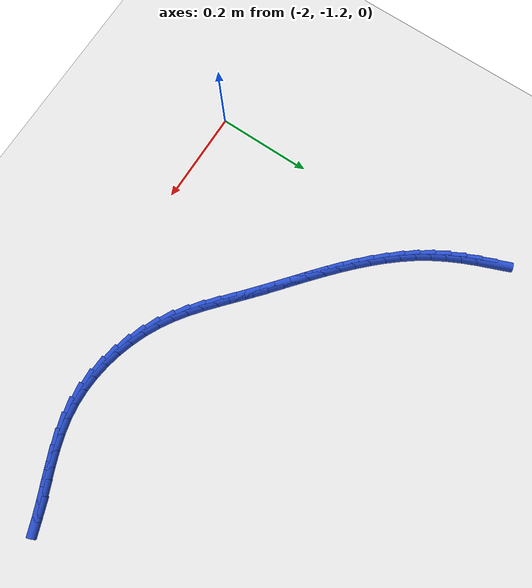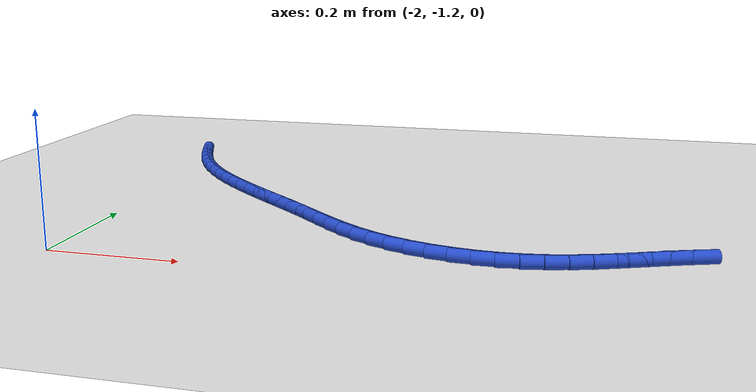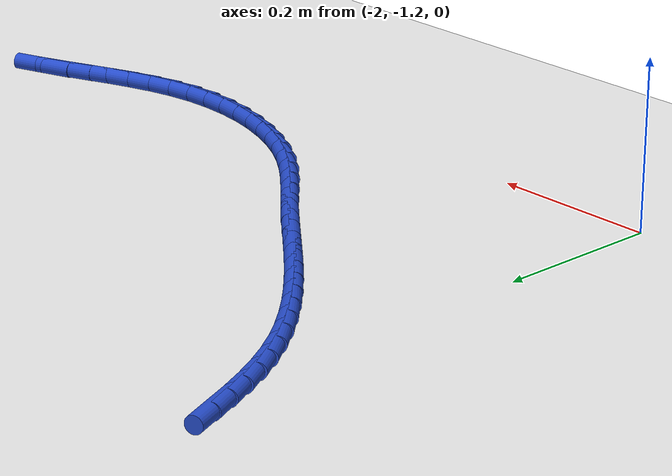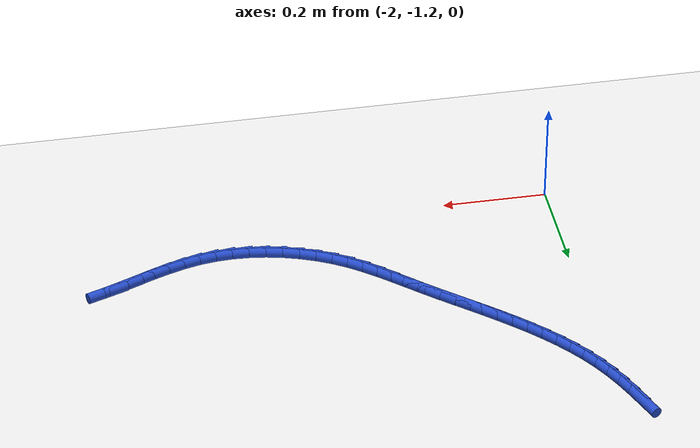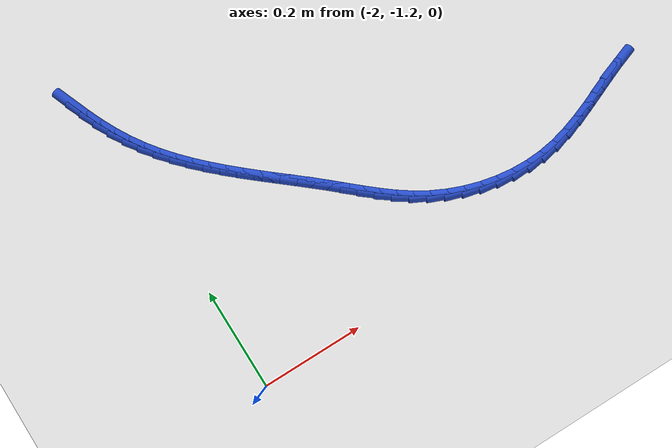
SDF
<sdf version="1.6">
 <world name="default">
  <model name="ground_plane">
   <static>1</static>
   <link name="link">
    <collision name="collision">
     <geometry><plane><normal>0 0 1</normal><size>100 100</size></plane></geometry>
     <surface><friction><ode><mu>100</mu><mu2>50</mu2></ode></friction></surface>
    </collision>
    <visual name="visual">
     <cast_shadows>0</cast_shadows>
     <geometry><plane><normal>0 0 1</normal><size>100 100</size></plane></geometry>
     <material>
      <script><uri>file://media/materials/scripts/gazebo.material</uri><name>Gazebo/WhiteGlow</name></script>
     </material>
    </visual>
   </link>
  </model>
  <model name="line">
   <link name="link_128">
    <pose>-2.0333318374800577 -0.5686166664253903 0.01 0 1.57 -1.1912159433056695</pose>
    <collision name="collision">
     <geometry><cylinder><radius>0.01</radius><length>0.08</length></cylinder></geometry>
    </collision>
    <visual name="visual">
     <material>
      <script><name>Gazebo/Blue</name><uri>file://media/materials/scripts/gazebo.material</uri></script>
     </material>
     <geometry><cylinder><radius>0.01</radius><length>0.08</length></cylinder></geometry>
    </visual>
   </link>
   <link name="link_129">
    <pose>-2.0215772260671696 -0.5980822921291878 0.01 0 1.57 -1.1540572271373954</pose>
    <collision name="collision">
     <geometry><cylinder><radius>0.01</radius><length>0.08</length></cylinder></geometry>
    </collision>
    <visual name="visual">
     <material>
      <script><name>Gazebo/Blue</name><uri>file://media/materials/scripts/gazebo.material</uri></script>
     </material>
     <geometry><cylinder><radius>0.01</radius><length>0.08</length></cylinder></geometry>
    </visual>
   </link>
   <link name="link_130">
    <pose>-2.0088110170128415 -0.6269215975905412 0.01 0 1.57 -1.1073058212748739</pose>
    <collision name="collision">
     <geometry><cylinder><radius>0.01</radius><length>0.08</length></cylinder></geometry>
    </collision>
    <visual name="visual">
     <material>
      <script><name>Gazebo/Blue</name><uri>file://media/materials/scripts/gazebo.material</uri></script>
     </material>
     <geometry><cylinder><radius>0.01</radius><length>0.08</length></cylinder></geometry>
    </visual>
   </link>
   <link name="link_131">
    <pose>-1.9948021968176 -0.6549502456118608 0.01 0 1.57 -1.0506847121864966</pose>
    <collision name="collision">
     <geometry><cylinder><radius>0.01</radius><length>0.08</length></cylinder></geometry>
    </collision>
    <visual name="visual">
     <material>
      <script><name>Gazebo/Blue</name><uri>file://media/materials/scripts/gazebo.material</uri></script>
     </material>
     <geometry><cylinder><radius>0.01</radius><length>0.08</length></cylinder></geometry>
    </visual>
   </link>
   <link name="link_132">
    <pose>-1.9793197519819756 -0.6819838989955553 0.01 0 1.57 -0.9861034100625111</pose>
    <collision name="collision">
     <geometry><cylinder><radius>0.01</radius><length>0.08</length></cylinder></geometry>
    </collision>
    <visual name="visual">
     <material>
      <script><name>Gazebo/Blue</name><uri>file://media/materials/scripts/gazebo.material</uri></script>
     </material>
     <geometry><cylinder><radius>0.01</radius><length>0.08</length></cylinder></geometry>
    </visual>
   </link>
   <link name="link_133">
    <pose>-1.962182335983068 -0.7078752817020942 0.01 0 1.57 -0.9247357023452776</pose>
    <collision name="collision">
     <geometry><cylinder><radius>0.01</radius><length>0.08</length></cylinder></geometry>
    </collision>
    <visual name="visual">
     <material>
      <script><name>Gazebo/Blue</name><uri>file://media/materials/scripts/gazebo.material</uri></script>
     </material>
     <geometry><cylinder><radius>0.01</radius><length>0.08</length></cylinder></geometry>
    </visual>
   </link>
   <link name="link_134">
    <pose>-1.94347979714886 -0.7326794814339546 0.01 0 1.57 -0.8706771427673246</pose>
    <collision name="collision">
     <geometry><cylinder><radius>0.01</radius><length>0.08</length></cylinder></geometry>
    </collision>
    <visual name="visual">
     <material>
      <script><name>Gazebo/Blue</name><uri>file://media/materials/scripts/gazebo.material</uri></script>
     </material>
     <geometry><cylinder><radius>0.01</radius><length>0.08</length></cylinder></geometry>
    </visual>
   </link>
   <link name="link_135">
    <pose>-1.923394085295848 -0.7565203113941149 0.01 0 1.57 -0.8240905201722946</pose>
    <collision name="collision">
     <geometry><cylinder><radius>0.01</radius><length>0.08</length></cylinder></geometry>
    </collision>
    <visual name="visual">
     <material>
      <script><name>Gazebo/Blue</name><uri>file://media/materials/scripts/gazebo.material</uri></script>
     </material>
     <geometry><cylinder><radius>0.01</radius><length>0.08</length></cylinder></geometry>
    </visual>
   </link>
   <link name="link_136">
    <pose>-1.9021072256888514 -0.7795216410845728 0.01 0 1.57 -0.7849432989127044</pose>
    <collision name="collision">
     <geometry><cylinder><radius>0.01</radius><length>0.08</length></cylinder></geometry>
    </collision>
    <visual name="visual">
     <material>
      <script><name>Gazebo/Blue</name><uri>file://media/materials/scripts/gazebo.material</uri></script>
     </material>
     <geometry><cylinder><radius>0.01</radius><length>0.08</length></cylinder></geometry>
    </visual>
   </link>
   <link name="link_137">
    <pose>-1.8798012435926872 -0.8018073400073276 0.01 0 1.57 -0.7530892033450471</pose>
    <collision name="collision">
     <geometry><cylinder><radius>0.01</radius><length>0.08</length></cylinder></geometry>
    </collision>
    <visual name="visual">
     <material>
      <script><name>Gazebo/Blue</name><uri>file://media/materials/scripts/gazebo.material</uri></script>
     </material>
     <geometry><cylinder><radius>0.01</radius><length>0.08</length></cylinder></geometry>
    </visual>
   </link>
   <link name="link_138">
    <pose>-1.8566581642721742 -0.8235012776643783 0.01 0 1.57 -0.7283330077787805</pose>
    <collision name="collision">
     <geometry><cylinder><radius>0.01</radius><length>0.08</length></cylinder></geometry>
    </collision>
    <visual name="visual">
     <material>
      <script><name>Gazebo/Blue</name><uri>file://media/materials/scripts/gazebo.material</uri></script>
     </material>
     <geometry><cylinder><radius>0.01</radius><length>0.08</length></cylinder></geometry>
    </visual>
   </link>
   <link name="link_139">
    <pose>-1.832860012992129 -0.844727323557724 0.01 0 1.57 -0.7104792345222577</pose>
    <collision name="collision">
     <geometry><cylinder><radius>0.01</radius><length>0.08</length></cylinder></geometry>
    </collision>
    <visual name="visual">
     <material>
      <script><name>Gazebo/Blue</name><uri>file://media/materials/scripts/gazebo.material</uri></script>
     </material>
     <geometry><cylinder><radius>0.01</radius><length>0.08</length></cylinder></geometry>
    </visual>
   </link>
   <link name="link_140">
    <pose>-1.8085888150173706 -0.8656093471893621 0.01 0 1.57 -0.6993661187297994</pose>
    <collision name="collision">
     <geometry><cylinder><radius>0.01</radius><length>0.08</length></cylinder></geometry>
    </collision>
    <visual name="visual">
     <material>
      <script><name>Gazebo/Blue</name><uri>file://media/materials/scripts/gazebo.material</uri></script>
     </material>
     <geometry><cylinder><radius>0.01</radius><length>0.08</length></cylinder></geometry>
    </visual>
   </link>
   <link name="link_141">
    <pose>-1.7840265956127175 -0.8862712180612929 0.01 0 1.57 -0.6948875568641754</pose>
    <collision name="collision">
     <geometry><cylinder><radius>0.01</radius><length>0.08</length></cylinder></geometry>
    </collision>
    <visual name="visual">
     <material>
      <script><name>Gazebo/Blue</name><uri>file://media/materials/scripts/gazebo.material</uri></script>
     </material>
     <geometry><cylinder><radius>0.01</radius><length>0.08</length></cylinder></geometry>
    </visual>
   </link>
   <link name="link_142">
    <pose>-1.7593553800429866 -0.9068368056755143 0.01 0 1.57 -0.6970056819738362</pose>
    <collision name="collision">
     <geometry><cylinder><radius>0.01</radius><length>0.08</length></cylinder></geometry>
    </collision>
    <visual name="visual">
     <material>
      <script><name>Gazebo/Blue</name><uri>file://media/materials/scripts/gazebo.material</uri></script>
     </material>
     <geometry><cylinder><radius>0.01</radius><length>0.08</length></cylinder></geometry>
    </visual>
   </link>
   <link name="link_143">
    <pose>-1.7347571935729955 -0.9274299795340257 0.01 0 1.57 -0.7057559091580365</pose>
    <collision name="collision">
     <geometry><cylinder><radius>0.01</radius><length>0.08</length></cylinder></geometry>
    </collision>
    <visual name="visual">
     <material>
      <script><name>Gazebo/Blue</name><uri>file://media/materials/scripts/gazebo.material</uri></script>
     </material>
     <geometry><cylinder><radius>0.01</radius><length>0.08</length></cylinder></geometry>
    </visual>
   </link>
   <link name="link_144">
    <pose>-1.7104140614675638 -0.9481746091388252 0.01 0 1.57 -0.7195799318943717</pose>
    <collision name="collision">
     <geometry><cylinder><radius>0.01</radius><length>0.08</length></cylinder></geometry>
    </collision>
    <visual name="visual">
     <material>
      <script><name>Gazebo/Blue</name><uri>file://media/materials/scripts/gazebo.material</uri></script>
     </material>
     <geometry><cylinder><radius>0.01</radius><length>0.08</length></cylinder></geometry>
    </visual>
   </link>
   <link name="link_145">
    <pose>-1.6864696896493567 -0.9691576600265422 0.01 0 1.57 -0.7228752325870458</pose>
    <collision name="collision">
     <geometry><cylinder><radius>0.01</radius><length>0.08</length></cylinder></geometry>
    </collision>
    <visual name="visual">
     <material>
      <script><name>Gazebo/Blue</name><uri>file://media/materials/scripts/gazebo.material</uri></script>
     </material>
     <geometry><cylinder><radius>0.01</radius><length>0.08</length></cylinder></geometry>
    </visual>
   </link>
   <link name="link_146">
    <pose>-1.6627079209304498 -0.9901195266544158 0.01 0 1.57 -0.7068540535263381</pose>
    <collision name="collision">
     <geometry><cylinder><radius>0.01</radius><length>0.08</length></cylinder></geometry>
    </collision>
    <visual name="visual">
     <material>
      <script><name>Gazebo/Blue</name><uri>file://media/materials/scripts/gazebo.material</uri></script>
     </material>
     <geometry><cylinder><radius>0.01</radius><length>0.08</length></cylinder></geometry>
    </visual>
   </link>
   <link name="link_147">
    <pose>-1.6387155145127368 -1.0106107994194724 0.01 0 1.57 -0.6712339032358948</pose>
    <collision name="collision">
     <geometry><cylinder><radius>0.01</radius><length>0.08</length></cylinder></geometry>
    </collision>
    <visual name="visual">
     <material>
      <script><name>Gazebo/Blue</name><uri>file://media/materials/scripts/gazebo.material</uri></script>
     </material>
     <geometry><cylinder><radius>0.01</radius><length>0.08</length></cylinder></geometry>
    </visual>
   </link>
   <link name="link_148">
    <pose>-1.6140772139335644 -1.0301801275054923 0.01 0 1.57 -0.6160962199955458</pose>
    <collision name="collision">
     <geometry><cylinder><radius>0.01</radius><length>0.08</length></cylinder></geometry>
    </collision>
    <visual name="visual">
     <material>
      <script><name>Gazebo/Blue</name><uri>file://media/materials/scripts/gazebo.material</uri></script>
     </material>
     <geometry><cylinder><radius>0.01</radius><length>0.08</length></cylinder></geometry>
    </visual>
   </link>
   <link name="link_149">
    <pose>-1.5883777627302793 -1.048376160096252 0.01 0 1.57 -0.5425683333781128</pose>
    <collision name="collision">
     <geometry><cylinder><radius>0.01</radius><length>0.08</length></cylinder></geometry>
    </collision>
    <visual name="visual">
     <material>
      <script><name>Gazebo/Blue</name><uri>file://media/materials/scripts/gazebo.material</uri></script>
     </material>
     <geometry><cylinder><radius>0.01</radius><length>0.08</length></cylinder></geometry>
    </visual>
   </link>
   <link name="link_150">
    <pose>-1.5612150150296742 -1.064753292084557 0.01 0 1.57 -0.461068422596062</pose>
    <collision name="collision">
     <geometry><cylinder><radius>0.01</radius><length>0.08</length></cylinder></geometry>
    </collision>
    <visual name="visual">
     <material>
      <script><name>Gazebo/Blue</name><uri>file://media/materials/scripts/gazebo.material</uri></script>
     </material>
     <geometry><cylinder><radius>0.01</radius><length>0.08</length></cylinder></geometry>
    </visual>
   </link>
   <link name="link_151">
    <pose>-1.5325162291581944 -1.0790102795828804 0.01 0 1.57 -0.38057339662184136</pose>
    <collision name="collision">
     <geometry><cylinder><radius>0.01</radius><length>0.08</length></cylinder></geometry>
    </collision>
    <visual name="visual">
     <material>
      <script><name>Gazebo/Blue</name><uri>file://media/materials/scripts/gazebo.material</uri></script>
     </material>
     <geometry><cylinder><radius>0.01</radius><length>0.08</length></cylinder></geometry>
    </visual>
   </link>
   <link name="link_152">
    <pose>-1.502554332066165 -1.0909973677988507 0.01 0 1.57 -0.30014951685106306</pose>
    <collision name="collision">
     <geometry><cylinder><radius>0.01</radius><length>0.08</length></cylinder></geometry>
    </collision>
    <visual name="visual">
     <material>
      <script><name>Gazebo/Blue</name><uri>file://media/materials/scripts/gazebo.material</uri></script>
     </material>
     <geometry><cylinder><radius>0.01</radius><length>0.08</length></cylinder></geometry>
    </visual>
   </link>
   <link name="link_153">
    <pose>-1.4716186165469451 -1.1005719742623148 0.01 0 1.57 -0.21845261117986045</pose>
    <collision name="collision">
     <geometry><cylinder><radius>0.01</radius><length>0.08</length></cylinder></geometry>
    </collision>
    <visual name="visual">
     <material>
      <script><name>Gazebo/Blue</name><uri>file://media/materials/scripts/gazebo.material</uri></script>
     </material>
     <geometry><cylinder><radius>0.01</radius><length>0.08</length></cylinder></geometry>
    </visual>
   </link>
   <link name="link_154">
    <pose>-1.4399983753938945 -1.1075915165031234 0.01 0 1.57 -0.13418279398079613</pose>
    <collision name="collision">
     <geometry><cylinder><radius>0.01</radius><length>0.08</length></cylinder></geometry>
    </collision>
    <visual name="visual">
     <material>
      <script><name>Gazebo/Blue</name><uri>file://media/materials/scripts/gazebo.material</uri></script>
     </material>
     <geometry><cylinder><radius>0.01</radius><length>0.08</length></cylinder></geometry>
    </visual>
   </link>
   <link name="link_155">
    <pose>-1.4079829014003713 -1.111913412051124 0.01 0 1.57 -0.04609438652661264</pose>
    <collision name="collision">
     <geometry><cylinder><radius>0.01</radius><length>0.08</length></cylinder></geometry>
    </collision>
    <visual name="visual">
     <material>
      <script><name>Gazebo/Blue</name><uri>file://media/materials/scripts/gazebo.material</uri></script>
     </material>
     <geometry><cylinder><radius>0.01</radius><length>0.08</length></cylinder></geometry>
    </visual>
   </link>
   <link name="link_156">
    <pose>-1.3758614873597335 -1.1133950784361661 0.01 0 1.57 0.04696719913194112</pose>
    <collision name="collision">
     <geometry><cylinder><radius>0.01</radius><length>0.08</length></cylinder></geometry>
    </collision>
    <visual name="visual">
     <material>
      <script><name>Gazebo/Blue</name><uri>file://media/materials/scripts/gazebo.material</uri></script>
     </material>
     <geometry><cylinder><radius>0.01</radius><length>0.08</length></cylinder></geometry>
    </visual>
   </link>
   <link name="link_157">
    <pose>-1.3439234260653412 -1.111893933188099 0.01 0 1.57 0.14569754360102677</pose>
    <collision name="collision">
     <geometry><cylinder><radius>0.01</radius><length>0.08</length></cylinder></geometry>
    </collision>
    <visual name="visual">
     <material>
      <script><name>Gazebo/Blue</name><uri>file://media/materials/scripts/gazebo.material</uri></script>
     </material>
     <geometry><cylinder><radius>0.01</radius><length>0.08</length></cylinder></geometry>
    </visual>
   </link>
   <link name="link_158">
    <pose>-1.3124537404251861 -1.1072761559130655 0.01 0 1.57 0.23897046765336843</pose>
    <collision name="collision">
     <geometry><cylinder><radius>0.01</radius><length>0.08</length></cylinder></geometry>
    </collision>
    <visual name="visual">
     <material>
      <script><name>Gazebo/Blue</name><uri>file://media/materials/scripts/gazebo.material</uri></script>
     </material>
     <geometry><cylinder><radius>0.01</radius><length>0.08</length></cylinder></geometry>
    </visual>
   </link>
   <link name="link_159">
    <pose>-1.2815697695158073 -1.0997520241024084 0.01 0 1.57 0.31099390243874575</pose>
    <collision name="collision">
     <geometry><cylinder><radius>0.01</radius><length>0.08</length></cylinder></geometry>
    </collision>
    <visual name="visual">
     <material>
      <script><name>Gazebo/Blue</name><uri>file://media/materials/scripts/gazebo.material</uri></script>
     </material>
     <geometry><cylinder><radius>0.01</radius><length>0.08</length></cylinder></geometry>
    </visual>
   </link>
   <link name="link_160">
    <pose>-1.2511700412288689 -1.0899808297130902 0.01 0 1.57 0.36072143963268893</pose>
    <collision name="collision">
     <geometry><cylinder><radius>0.01</radius><length>0.08</length></cylinder></geometry>
    </collision>
    <visual name="visual">
     <material>
      <script><name>Gazebo/Blue</name><uri>file://media/materials/scripts/gazebo.material</uri></script>
     </material>
     <geometry><cylinder><radius>0.01</radius><length>0.08</length></cylinder></geometry>
    </visual>
   </link>
   <link name="link_161">
    <pose>-1.2211383605373232 -1.0786520770675074 0.01 0 1.57 0.3887256739047319</pose>
    <collision name="collision">
     <geometry><cylinder><radius>0.01</radius><length>0.08</length></cylinder></geometry>
    </collision>
    <visual name="visual">
     <material>
      <script><name>Gazebo/Blue</name><uri>file://media/materials/scripts/gazebo.material</uri></script>
     </material>
     <geometry><cylinder><radius>0.01</radius><length>0.08</length></cylinder></geometry>
    </visual>
   </link>
   <link name="link_162">
    <pose>-1.1913585324141198 -1.0664552704880563 0.01 0 1.57 0.3954697995465506</pose>
    <collision name="collision">
     <geometry><cylinder><radius>0.01</radius><length>0.08</length></cylinder></geometry>
    </collision>
    <visual name="visual">
     <material>
      <script><name>Gazebo/Blue</name><uri>file://media/materials/scripts/gazebo.material</uri></script>
     </material>
     <geometry><cylinder><radius>0.01</radius><length>0.08</length></cylinder></geometry>
    </visual>
   </link>
   <link name="link_163">
    <pose>-1.1617143618322103 -1.0540799142971342 0.01 0 1.57 0.3809287819451858</pose>
    <collision name="collision">
     <geometry><cylinder><radius>0.01</radius><length>0.08</length></cylinder></geometry>
    </collision>
    <visual name="visual">
     <material>
      <script><name>Gazebo/Blue</name><uri>file://media/materials/scripts/gazebo.material</uri></script>
     </material>
     <geometry><cylinder><radius>0.01</radius><length>0.08</length></cylinder></geometry>
    </visual>
   </link>
   <link name="link_164">
    <pose>-1.1320896537645455 -1.0422155128171366 0.01 0 1.57 0.3444895597676557</pose>
    <collision name="collision">
     <geometry><cylinder><radius>0.01</radius><length>0.08</length></cylinder></geometry>
    </collision>
    <visual name="visual">
     <material>
      <script><name>Gazebo/Blue</name><uri>file://media/materials/scripts/gazebo.material</uri></script>
     </material>
     <geometry><cylinder><radius>0.01</radius><length>0.08</length></cylinder></geometry>
    </visual>
   </link>
  </model>
 </world>
</sdf>
